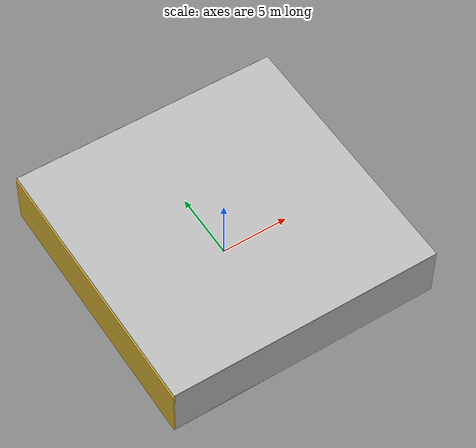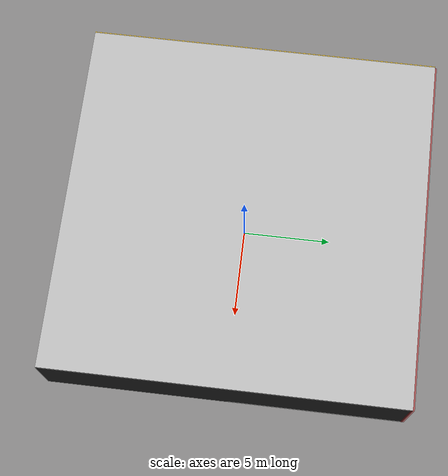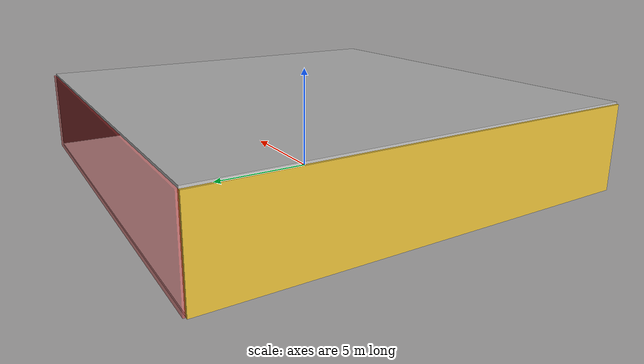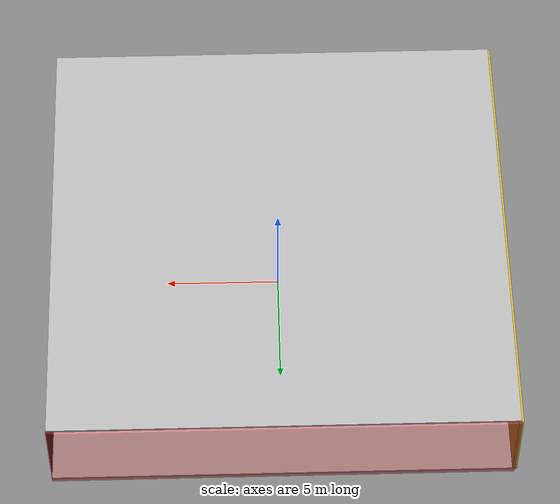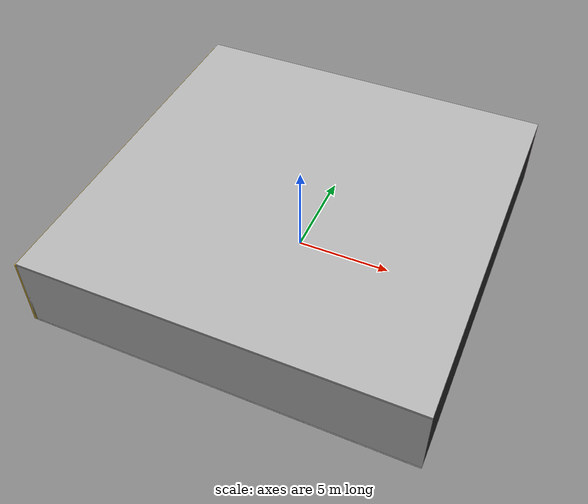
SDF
<sdf version="1.4">
 <world name="default">
  <physics type="ode">
   <max_step_size>0.001</max_step_size>
   <real_time_factor>1</real_time_factor>
   <real_time_update_rate>1000</real_time_update_rate>
   <gravity>0 0 -9.8</gravity>
  </physics>
  <scene><ambient>0.4 0.4 0.4 1</ambient><background>0.7 0.7 0.7 1</background><shadows>1</shadows></scene>
  <model name="Surrounding">
   <static>1</static>
   <link name="Ceiling">
    <collision name="Ceiling_Collision"><geometry><box><size>20 20 0.1</size></box></geometry></collision>
    <visual name="Ceiling_Visual">
     <geometry><box><size>20 20 0.1</size></box></geometry>
     <material>
      <script><uri>file://media/materials/scripts/gazebo.material</uri><name>Gazebo/Pioneer2Body</name></script>
     </material>
    </visual>
    <pose>0 0 4.05 0 0 0</pose>
   </link>
   <link name="Wall_South">
    <collision name="Wall_South_Collision">
     <geometry><box><size>20 0 4</size></box></geometry>
     <pose>0 0 2 0 -0 0</pose>
    </collision>
    <visual name="Wall_South_Visual">
     <pose>0 0 2 0 -0 0</pose>
     <geometry><box><size>20 0 4</size></box></geometry>
     <material>
      <script><uri>file://media/materials/scripts/gazebo.material</uri><name>Gazebo/LightOff</name></script>
     </material>
    </visual>
    <velocity_decay><linear>0</linear><angular>0</angular></velocity_decay>
    <pose>0 -10 0 0 -0 0</pose>
   </link>
   <link name="Wall_East">
    <collision name="Wall_21_Collision">
     <geometry><box><size>20 0 4</size></box></geometry>
     <pose>0 0 2 0 -0 0</pose>
    </collision>
    <visual name="Wall_21_Visual">
     <pose>0 0 2 0 -0 0</pose>
     <geometry><box><size>20 0 4</size></box></geometry>
     <material>
      <script><uri>file://media/materials/scripts/gazebo.material</uri><name>Gazebo/FlatBlack</name></script>
     </material>
    </visual>
    <velocity_decay><linear>0</linear><angular>0</angular></velocity_decay>
    <pose>10 0 0 0 -0 1.5708</pose>
   </link>
   <link name="Wall_North">
    <collision name="Wall_22_Collision">
     <geometry><box><size>20 0.2 4</size></box></geometry>
     <pose>0 0 2 0 -0 0</pose>
    </collision>
    <visual name="Wall_22_Visual">
     <pose>0 0 2 0 -0 0</pose>
     <geometry><box><size>20 0.2 4</size></box></geometry>
     <material>
      <script><uri>file://media/materials/scripts/gazebo.material</uri><name>Gazebo/RedTransparent</name></script>
     </material>
    </visual>
    <velocity_decay><linear>0</linear><angular>0</angular></velocity_decay>
    <pose>0 10 0 0 -0 0</pose>
   </link>
   <link name="Wall_West">
    <collision name="Wall_23_Collision">
     <geometry><box><size>20 0.2 4</size></box></geometry>
     <pose>0 0 2 0 -0 0</pose>
    </collision>
    <visual name="Wall_23_Visual">
     <pose>0 0 2 0 -0 0</pose>
     <geometry><box><size>20 0.2 4</size></box></geometry>
     <material>
      <script><uri>file://media/materials/scripts/gazebo.material</uri><name>Gazebo/Gold</name></script>
     </material>
    </visual>
    <velocity_decay><linear>0</linear><angular>0</angular></velocity_decay>
    <pose>-10 0 0 0 0 -1.5708</pose>
   </link>
   <link name="Ground_link">
    <collision name="collision">
     <pose>0 0 .05 0 -0 0</pose>
     <geometry><box><size>20 20 0.1</size></box></geometry>
    </collision>
    <visual name="visual">
     <pose>0 0 .05 0 -0 0</pose>
     <geometry><box><size>20 20 0.1</size></box></geometry>
     <material>
      <script><uri>file://media/materials/scripts/gazebo.material</uri><name>Gazebo/White</name></script>
     </material>
    </visual>
   </link>
   <static>1</static>
  </model>
  <spherical_coordinates>
   <surface_model>EARTH_WGS84</surface_model>
   <latitude_deg>0</latitude_deg>
   <longitude_deg>0</longitude_deg>
   <elevation>0</elevation>
   <heading_deg>0</heading_deg>
  </spherical_coordinates>
  <light name="lightball_0" type="diffuse">
   <diffuse>0.8 0.8 0.8 1</diffuse>
   <specular>0.2 0.2 0.2 1</specular>
   <attenuation>
    <range>100</range>
    <constant>0.7</constant>
    <linear>0.01</linear>
    <quadratic>0.001</quadratic>
   </attenuation>
   <direction>-0.5 0.1 -0.9</direction>
   <pose>0.821779542639 8.03383412267 1.50574752478 0 0 0</pose>
  </light>
  <light name="lightball_1" type="diffuse">
   <diffuse>0.8 0.8 0.8 1</diffuse>
   <specular>0.2 0.2 0.2 1</specular>
   <attenuation>
    <range>100</range>
    <constant>0.7</constant>
    <linear>0.01</linear>
    <quadratic>0.001</quadratic>
   </attenuation>
   <direction>-0.5 0.1 -0.9</direction>
   <pose>-2.16681060797 7.02736984158 3.55239111122 0 0 0</pose>
  </light>
  <light name="lightball_2" type="diffuse">
   <diffuse>0.8 0.8 0.8 1</diffuse>
   <specular>0.2 0.2 0.2 1</specular>
   <attenuation>
    <range>100</range>
    <constant>0.7</constant>
    <linear>0.01</linear>
    <quadratic>0.001</quadratic>
   </attenuation>
   <direction>-0.5 0.1 -0.9</direction>
   <pose>6.18808989611 -8.42036654471 2.84887322554 0 0 0</pose>
  </light>
  <light name="lightball_3" type="diffuse">
   <diffuse>0.8 0.8 0.8 1</diffuse>
   <specular>0.2 0.2 0.2 1</specular>
   <attenuation>
    <range>100</range>
    <constant>0.7</constant>
    <linear>0.01</linear>
    <quadratic>0.001</quadratic>
   </attenuation>
   <direction>-0.5 0.1 -0.9</direction>
   <pose>-7.49416980472 -3.83114905932 0.562409526209 0 0 0</pose>
  </light>
  <include>
   <uri>model://construction_cone</uri>
   <pose>-0.836936870066 3.91095309354 0 0 0 1.25926585275</pose>
  </include>
  <include><uri>model://table</uri><pose>2.65187959529 -7.09898727305 0 0 0 0.694695145488</pose></include>
  <include>
   <uri>model://construction_cone</uri>
   <pose>1.58975796626 3.79722790972 0 0 0 1.11246234812</pose>
  </include>
  <include>
   <uri>model://robocup_3Dsim_goal</uri>
   <pose>7.47731129045 -3.32942259557 0 0 0 2.85737367855</pose>
  </include>
  <include><uri>model://table</uri><pose>6.38470588526 -0.316396877982 0 0 0 2.64366656997</pose></include>
 </world>
</sdf>

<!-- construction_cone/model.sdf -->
<sdf version="1.5">
  <model name="Construction Cone">
    <link name="link">
      <collision name="collision">
        <geometry>
          <mesh>
            <scale>10 10 10</scale>
            <uri>file://isr-testbed/construction_cone/meshes/construction_cone.dae</uri>
          </mesh>
        </geometry>
      </collision>
      <visual name="visual">
        <geometry>
          <mesh>
            <scale>10 10 10</scale>
            <uri>file://isr-testbed/construction_cone/meshes/construction_cone.dae</uri>
          </mesh>
        </geometry>
      </visual>
    </link>
  </model>
</sdf>

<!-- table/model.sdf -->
<sdf version="1.5">
  <model name="table">
    <static>true</static>
    <link name="link">
      <collision name="surface">
        <pose>0 0 1.0 0 0 0</pose>
        <geometry>
          <box>
            <size>1.5 0.8 0.03</size>
          </box>
        </geometry>
        <surface>
          <friction>
            <ode>
              <mu>0.6</mu>
              <mu2>0.6</mu2>
            </ode>
          </friction>
        </surface>
      </collision>
      <visual name="visual1">
        <pose>0 0 1.0 0 0 0</pose>
        <geometry>
          <box>
            <size>1.5 0.8 0.03</size>
          </box>
        </geometry>
        <material>
          <script>
            <uri>model://media/materials/scripts/gazebo.material</uri>
            <name>Gazebo/Wood</name>
          </script>
        </material>
      </visual>
      <collision name="front_left_leg">
        <pose>0.68 0.38 0.5 0 0 0</pose>
        <geometry>
          <cylinder>
            <radius>0.02</radius>
            <length>1.0</length>
          </cylinder>
        </geometry>
      </collision>
      <visual name="front_left_leg">
        <pose>0.68 0.38 0.5 0 0 0</pose>
        <geometry>
          <cylinder>
            <radius>0.02</radius>
            <length>1.0</length>
          </cylinder>
        </geometry>
        <material>
          <script>
            <uri>model://media/materials/scripts/gazebo.material</uri>
            <name>Gazebo/Grey</name>
          </script>
        </material>
      </visual>
      <collision name="front_right_leg">
        <pose>0.68 -0.38 0.5 0 0 0</pose>
        <geometry>
          <cylinder>
            <radius>0.02</radius>
            <length>1.0</length>
          </cylinder>
        </geometry>
      </collision>
      <visual name="front_right_leg">
        <pose>0.68 -0.38 0.5 0 0 0</pose>
        <geometry>
          <cylinder>
            <radius>0.02</radius>
            <length>1.0</length>
          </cylinder>
        </geometry>
        <material>
          <script>
            <uri>model://media/materials/scripts/gazebo.material</uri>
            <name>Gazebo/Grey</name>
          </script>
        </material>
      </visual>
      <collision name="back_right_leg">
        <pose>-0.68 -0.38 0.5 0 0 0</pose>
        <geometry>
          <cylinder>
            <radius>0.02</radius>
            <length>1.0</length>
          </cylinder>
        </geometry>
      </collision>
      <visual name="back_right_leg">
        <pose>-0.68 -0.38 0.5 0 0 0</pose>
        <geometry>
          <cylinder>
            <radius>0.02</radius>
            <length>1.0</length>
          </cylinder>
        </geometry>
        <material>
          <script>
            <uri>model://media/materials/scripts/gazebo.material</uri>
            <name>Gazebo/Grey</name>
          </script>
        </material>
      </visual>
      <collision name="back_left_leg">
        <pose>-0.68 0.38 0.5 0 0 0</pose>
        <geometry>
          <cylinder>
            <radius>0.02</radius>
            <length>1.0</length>
          </cylinder>
        </geometry>
      </collision>
      <visual name="back_left_leg">
        <pose>-0.68 0.38 0.5 0 0 0</pose>
        <geometry>
          <cylinder>
            <radius>0.02</radius>
            <length>1.0</length>
          </cylinder>
        </geometry>
        <material>
          <script>
            <uri>model://media/materials/scripts/gazebo.material</uri>
            <name>Gazebo/Grey</name>
          </script>
        </material>
      </visual>
    </link>
  </model>
</sdf>

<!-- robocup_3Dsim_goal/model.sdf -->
<sdf version="1.5">
  <model name="robocup_3d_goal">
    <static>true</static>
    <link name="left_post">
      <pose>0 1.05 0.45 0 0 0</pose>
      <collision name="collision">
        <geometry>
          <cylinder>
            <radius>0.05</radius>
            <length>0.9</length>
          </cylinder>
        </geometry>
      </collision>
      <visual name="visual">
        <geometry>
          <cylinder>
            <radius>0.05</radius>
            <length>0.9</length>
          </cylinder>
        </geometry>
        <material>
          <script>
            <uri>file://media/materials/scripts/gazebo.material</uri>
            <name>Gazebo/ZincYellow</name>
          </script>
        </material>
      </visual>
    </link>
    <link name="left_support_horiz_lower">
      <pose>0.30 1.05 0.01 0 0 0</pose>
      <collision name="collision">
        <geometry>
          <box>
            <size>0.50 0.02 0.02</size>
          </box>
        </geometry>
      </collision>
      <visual name="visual">
        <geometry>
          <box>
            <size>0.50 0.02 0.02</size>
          </box>
        </geometry>
        <material>
          <script>
            <uri>file://media/materials/scripts/gazebo.material</uri>
            <name>Gazebo/White</name>
          </script>
        </material>
      </visual>
    </link>
    <link name="left_support_horiz_upper">
      <pose>0.30 1.05 0.79 0 0 0</pose>
      <collision name="collision">
        <geometry>
          <box>
            <size>0.50 0.02 0.02</size>
          </box>
        </geometry>
      </collision>
      <visual name="visual">
        <geometry>
          <box>
            <size>0.50 0.02 0.02</size>
          </box>
        </geometry>
        <material>
          <script>
            <uri>file://media/materials/scripts/gazebo.material</uri>
            <name>Gazebo/White</name>
          </script>
        </material>
      </visual>
    </link>
    <link name="left_support_vertical">
      <pose>0.56 1.05 0.4 0 1.5708 0</pose>
      <collision name="collision">
        <geometry>
          <box>
            <size>0.80 0.02 0.02</size>
          </box>
        </geometry>
      </collision>
      <visual name="visual">
        <geometry>
          <box>
            <size>0.80 0.02 0.02</size>
          </box>
        </geometry>
        <material>
          <script>
            <uri>file://media/materials/scripts/gazebo.material</uri>
            <name>Gazebo/White</name>
          </script>
        </material>
      </visual>
    </link>
    <link name="right_support_horiz_lower">
      <pose>0.30 -1.05 0.01 0 0 0</pose>
      <collision name="collision">
        <geometry>
          <box>
            <size>0.50 0.02 0.02</size>
          </box>
        </geometry>
      </collision>
      <visual name="visual">
        <geometry>
          <box>
            <size>0.50 0.02 0.02</size>
          </box>
        </geometry>
        <material>
          <script>
            <uri>file://media/materials/scripts/gazebo.material</uri>
            <name>Gazebo/White</name>
          </script>
        </material>
      </visual>
    </link>
    <link name="right_support_horiz_upper">
      <pose>0.30 -1.05 0.79 0 0 0</pose>
      <collision name="collision">
        <geometry>
          <box>
            <size>0.50 0.02 0.02</size>
          </box>
        </geometry>
      </collision>
      <visual name="visual">
        <geometry>
          <box>
            <size>0.50 0.02 0.02</size>
          </box>
        </geometry>
        <material>
          <script>
            <uri>file://media/materials/scripts/gazebo.material</uri>
            <name>Gazebo/White</name>
          </script>
        </material>
      </visual>
    </link>
    <link name="right_support_vertical">
      <pose>0.56 -1.05 0.4 0 1.5708 0</pose>
      <collision name="collision">
        <geometry>
          <box>
            <size>0.80 0.02 0.02</size>
          </box>
        </geometry>
      </collision>
      <visual name="visual">
        <geometry>
          <box>
            <size>0.80 0.02 0.02</size>
          </box>
        </geometry>
        <material>
          <script>
            <uri>file://media/materials/scripts/gazebo.material</uri>
            <name>Gazebo/White</name>
          </script>
        </material>
      </visual>
    </link>
    <link name="center_support_horiz_lower">
      <pose>0.56 0 0.01 0 1.5708 0</pose>
      <collision name="collision">
        <geometry>
          <box>
            <size>0.02 2.08 0.02</size>
          </box>
        </geometry>
      </collision>
      <visual name="visual">
        <geometry>
          <box>
            <size>0.02 2.08 0.02</size>
          </box>
        </geometry>
        <material>
          <script>
            <uri>file://media/materials/scripts/gazebo.material</uri>
            <name>Gazebo/White</name>
          </script>
        </material>
      </visual>
    </link>
    <link name="center_support_horiz_upper">
      <pose>0.56 0 0.79 0 1.5708 0</pose>
      <collision name="collision">
        <geometry>
          <box>
            <size>0.02 2.08 0.02</size>
          </box>
        </geometry>
      </collision>
      <visual name="visual">
        <geometry>
          <box>
            <size>0.02 2.08 0.02</size>
          </box>
        </geometry>
        <material>
          <script>
            <uri>file://media/materials/scripts/gazebo.material</uri>
            <name>Gazebo/White</name>
          </script>
        </material>
      </visual>
    </link>
    <link name="right_post">
      <pose>0 -1.05 0.45 0 0 0</pose>
      <collision name="collision">
        <geometry>
          <cylinder>
            <radius>0.05</radius>
            <length>0.9</length>
          </cylinder>
        </geometry>
      </collision>
      <visual name="visual">
        <geometry>
          <cylinder>
            <radius>0.05</radius>
            <length>0.9</length>
          </cylinder>
        </geometry>
        <material>
          <script>
            <uri>file://media/materials/scripts/gazebo.material</uri>
            <name>Gazebo/ZincYellow</name>
          </script>
        </material>
      </visual>
    </link>
    <link name="crossbar">
      <pose>0 0 0.85 1.57 1.57 0</pose>
      <collision name="collision">
        <geometry>
          <cylinder>
            <radius>0.05</radius>
            <length>2.0</length>
          </cylinder>
        </geometry>
      </collision>
      <visual name="visual">
        <geometry>
          <cylinder>
            <radius>0.05</radius>
            <length>2.0</length>
          </cylinder>
        </geometry>
        <material>
          <script>
            <uri>file://media/materials/scripts/gazebo.material</uri>
            <name>Gazebo/ZincYellow</name>
          </script>
        </material>
      </visual>
    </link>
    <link name="center_net">
      <pose>0.56 0 0.40 0 0 0</pose>
      <collision name="collision">
        <geometry>
          <box>
            <size>0.01 2.1 0.80</size>
          </box>
        </geometry>
      </collision>
      <visual name="visual">
        <geometry>
          <box>
            <size>0.01 2.1 0.80</size>
          </box>
        </geometry>
        <material>
          <script>
            <uri>model://../model_source/models/robocup09_spl_field/materials/scripts/</uri>
            <uri>model://../model_source/models/robocup09_spl_field/materials/textures/</uri>
            <name>RoboCup/Net</name>
          </script>
        </material>
      </visual>
    </link>
    <link name="left_net">
      <pose>0.30 1.05 0.40 0 0 0</pose>
      <collision name="collision">
        <geometry>
          <box>
            <size>0.50 0.01 0.76</size>
          </box>
        </geometry>
      </collision>
      <visual name="visual">
        <geometry>
          <box>
            <size>0.50 0.01 0.76</size>
          </box>
        </geometry>
        <material>
          <script>
            <uri>model://../model_source/models/robocup09_spl_field/materials/scripts/</uri>
            <uri>model://../model_source/models/robocup09_spl_field/materials/textures/</uri>
            <name>RoboCup/Net</name>
          </script>
        </material>
      </visual>
    </link>
    <link name="right_net">
      <pose>0.30 -1.05 0.40 0 0 0</pose>
      <collision name="collision">
        <geometry>
          <box>
            <size>0.50 0.01 0.76</size>
          </box>
        </geometry>
      </collision>
      <visual name="visual">
        <geometry>
          <box>
            <size>0.50 0.01 0.76</size>
          </box>
        </geometry>
        <material>
          <script>
            <uri>model://../model_source/models/robocup09_spl_field/materials/scripts/</uri>
            <uri>model://../model_source/models/robocup09_spl_field/materials/textures/</uri>
            <name>RoboCup/Net</name>
          </script>
        </material>
      </visual>
    </link>
  </model>
</sdf>
